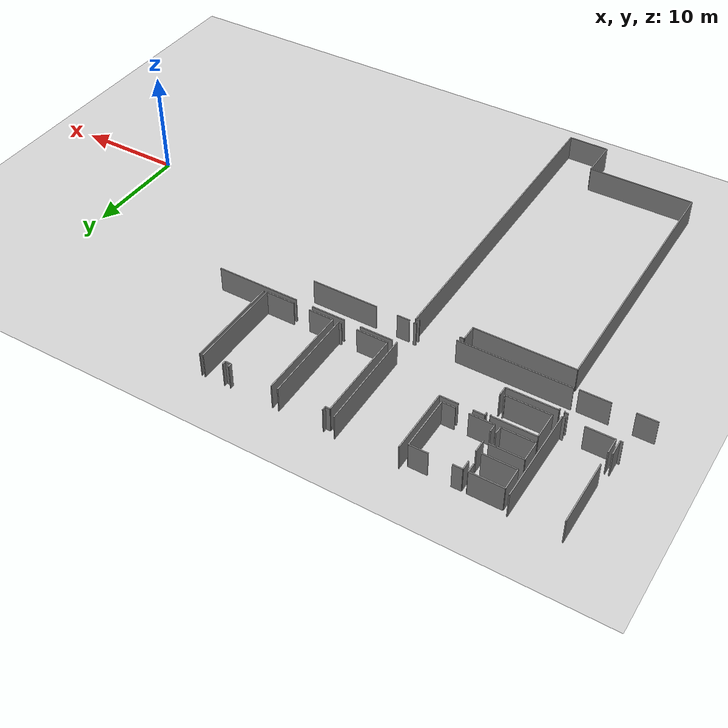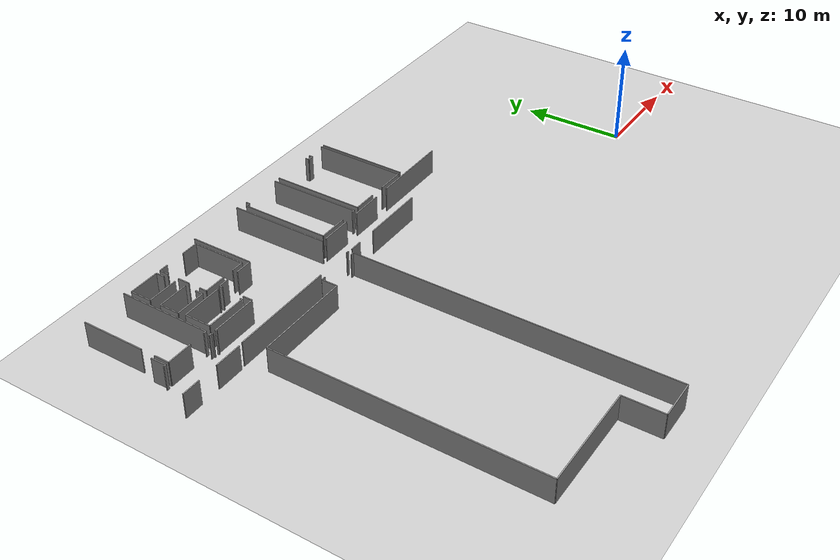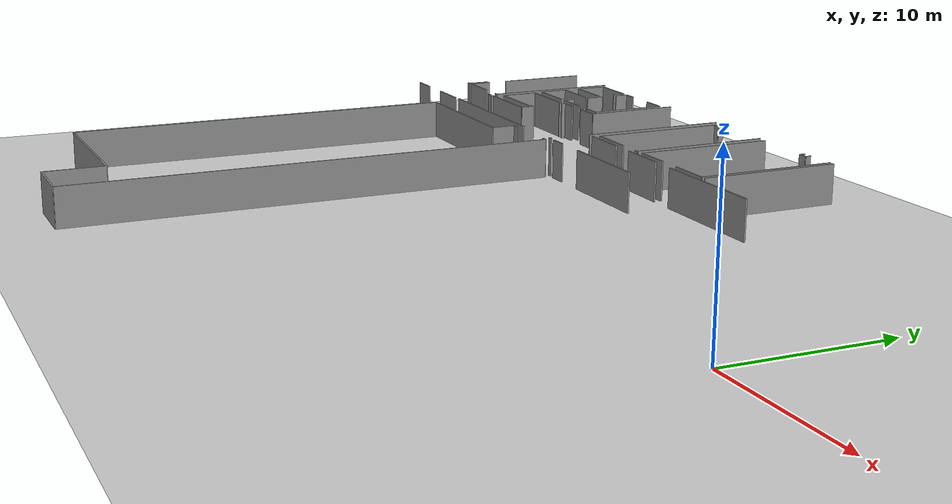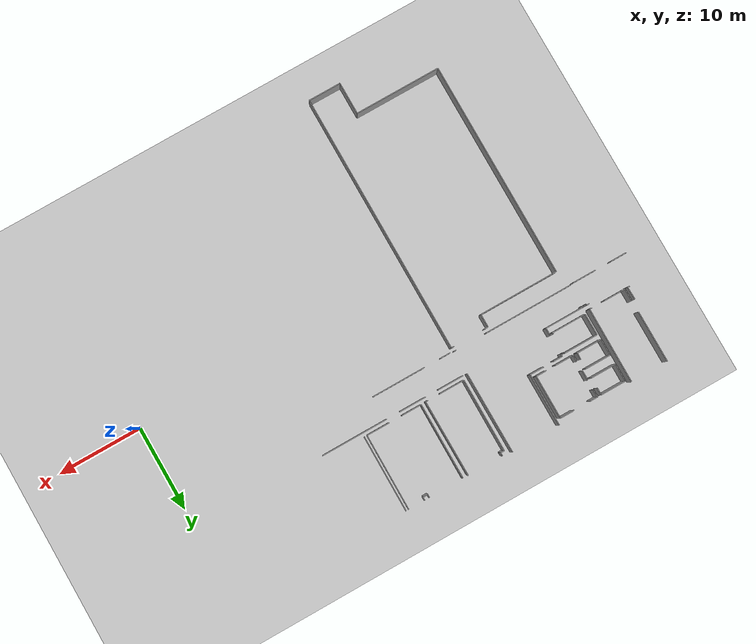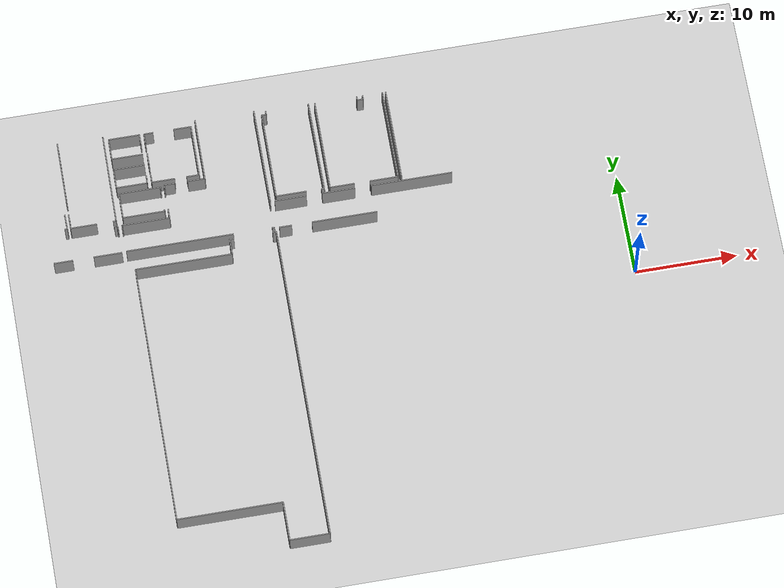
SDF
<sdf version="1.6">
 <world name="default">
  <model name="ground_plane">
   <static>1</static>
   <link name="link">
    <collision name="collision">
     <geometry><plane><normal>0 0 1</normal><size>100 100</size></plane></geometry>
     <surface><friction><ode><mu>100</mu><mu2>50</mu2></ode></friction></surface>
    </collision>
    <visual name="visual">
     <cast_shadows>0</cast_shadows>
     <geometry><plane><normal>0 0 1</normal><size>100 100</size></plane></geometry>
     <material>
      <script><uri>file://media/materials/scripts/gazebo.material</uri><name>Gazebo/Grey</name></script>
     </material>
    </visual>
   </link>
  </model>
  <model name="50010536_PLAN4">
   <static>1</static>
   <link name="Wall_0">
    <collision name="Wall_0_Collision">
     <geometry><box><size>2.76519696537 0.1 2.5</size></box></geometry>
     <pose>1.38259848268 0 1.25 0 0 0</pose>
    </collision>
    <visual name="Wall_0_Visual">
     <pose>1.38259848268 0 1.25 0 0 0</pose>
     <geometry><box><size>2.76519696537 0.1 2.5</size></box></geometry>
     <material>
      <script><uri>file://media/materials/scripts/gazebo.material</uri><name>Gazebo/Grey</name></script>
      <ambient>1 1 1 1</ambient>
     </material>
    </visual>
    <pose>53.7737231375 -12.5419166429 0 0 0 3.14159265359</pose>
   </link>
   <link name="Wall_1">
    <collision name="Wall_1_Collision">
     <geometry><box><size>1.85861663969 0.1 2.5</size></box></geometry>
     <pose>0.929308319843 0 1.25 0 0 0</pose>
    </collision>
    <visual name="Wall_1_Visual">
     <pose>0.929308319843 0 1.25 0 0 0</pose>
     <geometry><box><size>1.85861663969 0.1 2.5</size></box></geometry>
     <material>
      <script><uri>file://media/materials/scripts/gazebo.material</uri><name>Gazebo/Grey</name></script>
      <ambient>1 1 1 1</ambient>
     </material>
    </visual>
    <pose>48.9759578453 -12.5419166429 0 0 0 3.14159265359</pose>
   </link>
   <link name="Wall_20">
    <collision name="Wall_20_Collision">
     <geometry><box><size>0.30752626734 0.1 2.5</size></box></geometry>
     <pose>0.15376313367 0 1.25 0 0 0</pose>
    </collision>
    <visual name="Wall_20_Visual">
     <pose>0.15376313367 0 1.25 0 0 0</pose>
     <geometry><box><size>0.30752626734 0.1 2.5</size></box></geometry>
     <material>
      <script><uri>file://media/materials/scripts/gazebo.material</uri><name>Gazebo/Grey</name></script>
      <ambient>1 1 1 1</ambient>
     </material>
    </visual>
    <pose>53.4222645462 -9.72712440085 0 0 0 0.0</pose>
   </link>
   <link name="Wall_21">
    <collision name="Wall_21_Collision">
     <geometry><box><size>0.14932537456 0.1 2.5</size></box></geometry>
     <pose>0.0746626872802 0 1.25 0 0 0</pose>
    </collision>
    <visual name="Wall_21_Visual">
     <pose>0.0746626872802 0 1.25 0 0 0</pose>
     <geometry><box><size>0.14932537456 0.1 2.5</size></box></geometry>
     <material>
      <script><uri>file://media/materials/scripts/gazebo.material</uri><name>Gazebo/Grey</name></script>
      <ambient>1 1 1 1</ambient>
     </material>
    </visual>
    <pose>53.7297908136 -9.72712440085 0 0 0 -1.27217236395</pose>
   </link>
   <link name="Wall_69">
    <collision name="Wall_69_Collision">
     <geometry><box><size>0.261308446815 0.1 2.5</size></box></geometry>
     <pose>0.130654223407 0 1.25 0 0 0</pose>
    </collision>
    <visual name="Wall_69_Visual">
     <pose>0.130654223407 0 1.25 0 0 0</pose>
     <geometry><box><size>0.261308446815 0.1 2.5</size></box></geometry>
     <material>
      <script><uri>file://media/materials/scripts/gazebo.material</uri><name>Gazebo/Grey</name></script>
      <ambient>1 1 1 1</ambient>
     </material>
    </visual>
    <pose>48.9322794654 -9.20760562486 0 0 0 3.14159265359</pose>
   </link>
   <link name="Wall_73">
    <collision name="Wall_73_Collision">
     <geometry><box><size>1.50540536487 0.1 2.5</size></box></geometry>
     <pose>0.752702682434 0 1.25 0 0 0</pose>
    </collision>
    <visual name="Wall_73_Visual">
     <pose>0.752702682434 0 1.25 0 0 0</pose>
     <geometry><box><size>1.50540536487 0.1 2.5</size></box></geometry>
     <material>
      <script><uri>file://media/materials/scripts/gazebo.material</uri><name>Gazebo/Grey</name></script>
      <ambient>1 1 1 1</ambient>
     </material>
    </visual>
    <pose>48.8952036314 -7.70265688982 0 0 0 -1.54616536422</pose>
   </link>
   <link name="Wall_74">
    <collision name="Wall_74_Collision">
     <geometry><box><size>0.302955274101 0.1 2.5</size></box></geometry>
     <pose>0.15147763705 0 1.25 0 0 0</pose>
    </collision>
    <visual name="Wall_74_Visual">
     <pose>0.15147763705 0 1.25 0 0 0</pose>
     <geometry><box><size>0.302955274101 0.1 2.5</size></box></geometry>
     <material>
      <script><uri>file://media/materials/scripts/gazebo.material</uri><name>Gazebo/Grey</name></script>
      <ambient>1 1 1 1</ambient>
     </material>
    </visual>
    <pose>53.7071897914 -9.19244516395 0 0 0 3.14159265359</pose>
   </link>
   <link name="Wall_75">
    <collision name="Wall_75_Collision">
     <geometry><box><size>2.54858267467 0.1 2.5</size></box></geometry>
     <pose>1.27429133733 0 1.25 0 0 0</pose>
    </collision>
    <visual name="Wall_75_Visual">
     <pose>1.27429133733 0 1.25 0 0 0</pose>
     <geometry><box><size>2.54858267467 0.1 2.5</size></box></geometry>
     <material>
      <script><uri>file://media/materials/scripts/gazebo.material</uri><name>Gazebo/Grey</name></script>
      <ambient>1 1 1 1</ambient>
     </material>
    </visual>
    <pose>51.808957877 -9.19244516395 0 0 0 3.14159265359</pose>
   </link>
   <link name="Wall_76">
    <collision name="Wall_76_Collision">
     <geometry><box><size>1.48277941783 0.1 2.5</size></box></geometry>
     <pose>0.741389708917 0 1.25 0 0 0</pose>
    </collision>
    <visual name="Wall_76_Visual">
     <pose>0.741389708917 0 1.25 0 0 0</pose>
     <geometry><box><size>1.48277941783 0.1 2.5</size></box></geometry>
     <material>
      <script><uri>file://media/materials/scripts/gazebo.material</uri><name>Gazebo/Grey</name></script>
      <ambient>1 1 1 1</ambient>
     </material>
    </visual>
    <pose>49.2603752024 -9.19244516395 0 0 0 1.57079632679</pose>
   </link>
   <link name="Wall_77">
    <collision name="Wall_77_Collision">
     <geometry><box><size>6.1405961337 0.1 2.5</size></box></geometry>
     <pose>3.07029806685 0 1.25 0 0 0</pose>
    </collision>
    <visual name="Wall_77_Visual">
     <pose>3.07029806685 0 1.25 0 0 0</pose>
     <geometry><box><size>6.1405961337 0.1 2.5</size></box></geometry>
     <material>
      <script><uri>file://media/materials/scripts/gazebo.material</uri><name>Gazebo/Grey</name></script>
      <ambient>1 1 1 1</ambient>
     </material>
    </visual>
    <pose>49.2603752024 -6.34822080437 0 0 0 1.57079632679</pose>
   </link>
   <link name="Wall_78">
    <collision name="Wall_78_Collision">
     <geometry><box><size>8.98489387824 0.1 2.5</size></box></geometry>
     <pose>4.49244693912 0 1.25 0 0 0</pose>
    </collision>
    <visual name="Wall_78_Visual">
     <pose>4.49244693912 0 1.25 0 0 0</pose>
     <geometry><box><size>8.98489387824 0.1 2.5</size></box></geometry>
     <material>
      <script><uri>file://media/materials/scripts/gazebo.material</uri><name>Gazebo/Grey</name></script>
      <ambient>1 1 1 1</ambient>
     </material>
    </visual>
    <pose>53.7435037933 -0.207624670666 0 0 0 -1.57483801067</pose>
   </link>
   <link name="Wall_79">
    <collision name="Wall_79_Collision">
     <geometry><box><size>0.267910992604 0.1 2.5</size></box></geometry>
     <pose>0.133955496302 0 1.25 0 0 0</pose>
    </collision>
    <visual name="Wall_79_Visual">
     <pose>0.133955496302 0 1.25 0 0 0</pose>
     <geometry><box><size>0.267910992604 0.1 2.5</size></box></geometry>
     <material>
      <script><uri>file://media/materials/scripts/gazebo.material</uri><name>Gazebo/Grey</name></script>
      <ambient>1 1 1 1</ambient>
     </material>
    </visual>
    <pose>68.7142684824 -12.4743675206 0 0 0 3.14159265359</pose>
   </link>
   <link name="Wall_80">
    <collision name="Wall_80_Collision">
     <geometry><box><size>10.4739231184 0.1 2.5</size></box></geometry>
     <pose>5.23696155922 0 1.25 0 0 0</pose>
    </collision>
    <visual name="Wall_80_Visual">
     <pose>5.23696155922 0 1.25 0 0 0</pose>
     <geometry><box><size>10.4739231184 0.1 2.5</size></box></geometry>
     <material>
      <script><uri>file://media/materials/scripts/gazebo.material</uri><name>Gazebo/Grey</name></script>
      <ambient>1 1 1 1</ambient>
     </material>
    </visual>
    <pose>64.6735104593 -12.4743675206 0 0 0 3.14159265359</pose>
   </link>
   <link name="Wall_81">
    <collision name="Wall_81_Collision">
     <geometry><box><size>0.174231025617 0.1 2.5</size></box></geometry>
     <pose>0.0871155128083 0 1.25 0 0 0</pose>
    </collision>
    <visual name="Wall_81_Visual">
     <pose>0.0871155128083 0 1.25 0 0 0</pose>
     <geometry><box><size>0.174231025617 0.1 2.5</size></box></geometry>
     <material>
      <script><uri>file://media/materials/scripts/gazebo.material</uri><name>Gazebo/Grey</name></script>
      <ambient>1 1 1 1</ambient>
     </material>
    </visual>
    <pose>54.1995873409 -9.90452972733 0 0 0 1.57079632679</pose>
   </link>
   <link name="Wall_82">
    <collision name="Wall_82_Collision">
     <geometry><box><size>4.64616068311 0.1 2.5</size></box></geometry>
     <pose>2.32308034155 0 1.25 0 0 0</pose>
    </collision>
    <visual name="Wall_82_Visual">
     <pose>2.32308034155 0 1.25 0 0 0</pose>
     <geometry><box><size>4.64616068311 0.1 2.5</size></box></geometry>
     <material>
      <script><uri>file://media/materials/scripts/gazebo.material</uri><name>Gazebo/Grey</name></script>
      <ambient>1 1 1 1</ambient>
     </material>
    </visual>
    <pose>54.1995873409 -9.73029870171 0 0 0 0.0</pose>
   </link>
   <link name="Wall_83">
    <collision name="Wall_83_Collision">
     <geometry><box><size>0.936367964956 0.1 2.5</size></box></geometry>
     <pose>0.468183982478 0 1.25 0 0 0</pose>
    </collision>
    <visual name="Wall_83_Visual">
     <pose>0.468183982478 0 1.25 0 0 0</pose>
     <geometry><box><size>0.936367964956 0.1 2.5</size></box></geometry>
     <material>
      <script><uri>file://media/materials/scripts/gazebo.material</uri><name>Gazebo/Grey</name></script>
      <ambient>1 1 1 1</ambient>
     </material>
    </visual>
    <pose>58.845748024 -9.73029870171 0 0 0 1.57079632679</pose>
   </link>
   <link name="Wall_84">
    <collision name="Wall_84_Collision">
     <geometry><box><size>0.315449322287 0.1 2.5</size></box></geometry>
     <pose>0.157724661143 0 1.25 0 0 0</pose>
    </collision>
    <visual name="Wall_84_Visual">
     <pose>0.157724661143 0 1.25 0 0 0</pose>
     <geometry><box><size>0.315449322287 0.1 2.5</size></box></geometry>
     <material>
      <script><uri>file://media/materials/scripts/gazebo.material</uri><name>Gazebo/Grey</name></script>
      <ambient>1 1 1 1</ambient>
     </material>
    </visual>
    <pose>58.845748024 -6.56407326286 0 0 0 1.57079632679</pose>
   </link>
   <link name="Wall_85">
    <collision name="Wall_85_Collision">
     <geometry><box><size>1.04066279402 0.1 2.5</size></box></geometry>
     <pose>0.52033139701 0 1.25 0 0 0</pose>
    </collision>
    <visual name="Wall_85_Visual">
     <pose>0.52033139701 0 1.25 0 0 0</pose>
     <geometry><box><size>1.04066279402 0.1 2.5</size></box></geometry>
     <material>
      <script><uri>file://media/materials/scripts/gazebo.material</uri><name>Gazebo/Grey</name></script>
      <ambient>1 1 1 1</ambient>
     </material>
    </visual>
    <pose>58.845748024 -6.24862394058 0 0 0 0.0</pose>
   </link>
   <link name="Wall_86">
    <collision name="Wall_86_Collision">
     <geometry><box><size>1.69050566613 0.1 2.5</size></box></geometry>
     <pose>0.845252833064 0 1.25 0 0 0</pose>
    </collision>
    <visual name="Wall_86_Visual">
     <pose>0.845252833064 0 1.25 0 0 0</pose>
     <geometry><box><size>1.69050566613 0.1 2.5</size></box></geometry>
     <material>
      <script><uri>file://media/materials/scripts/gazebo.material</uri><name>Gazebo/Grey</name></script>
      <ambient>1 1 1 1</ambient>
     </material>
    </visual>
    <pose>61.1624797638 -6.24862394058 0 0 0 0.0</pose>
   </link>
   <link name="Wall_87">
    <collision name="Wall_87_Collision">
     <geometry><box><size>6.23442846713 0.1 2.5</size></box></geometry>
     <pose>3.11721423357 0 1.25 0 0 0</pose>
    </collision>
    <visual name="Wall_87_Visual">
     <pose>3.11721423357 0 1.25 0 0 0</pose>
     <geometry><box><size>6.23442846713 0.1 2.5</size></box></geometry>
     <material>
      <script><uri>file://media/materials/scripts/gazebo.material</uri><name>Gazebo/Grey</name></script>
      <ambient>1 1 1 1</ambient>
     </material>
    </visual>
    <pose>62.85298543 -6.24862394058 0 0 0 1.57079632679</pose>
   </link>
   <link name="Wall_88">
    <collision name="Wall_88_Collision">
     <geometry><box><size>9.68648778193 0.1 2.5</size></box></geometry>
     <pose>4.84324389096 0 1.25 0 0 0</pose>
    </collision>
    <visual name="Wall_88_Visual">
     <pose>4.84324389096 0 1.25 0 0 0</pose>
     <geometry><box><size>9.68648778193 0.1 2.5</size></box></geometry>
     <material>
      <script><uri>file://media/materials/scripts/gazebo.material</uri><name>Gazebo/Grey</name></script>
      <ambient>1 1 1 1</ambient>
     </material>
    </visual>
    <pose>68.6609402279 -0.014195473447 0 0 0 -1.56529087166</pose>
   </link>
   <link name="Wall_89">
    <collision name="Wall_89_Collision">
     <geometry><box><size>4.09103894867 0.1 2.5</size></box></geometry>
     <pose>2.04551947434 0 1.25 0 0 0</pose>
    </collision>
    <visual name="Wall_89_Visual">
     <pose>2.04551947434 0 1.25 0 0 0</pose>
     <geometry><box><size>4.09103894867 0.1 2.5</size></box></geometry>
     <material>
      <script><uri>file://media/materials/scripts/gazebo.material</uri><name>Gazebo/Grey</name></script>
      <ambient>1 1 1 1</ambient>
     </material>
    </visual>
    <pose>58.4955591531 -8.96585087135 0 0 0 3.14159265359</pose>
   </link>
   <link name="Wall_90">
    <collision name="Wall_90_Collision">
     <geometry><box><size>2.55467733232 0.1 2.5</size></box></geometry>
     <pose>1.27733866616 0 1.25 0 0 0</pose>
    </collision>
    <visual name="Wall_90_Visual">
     <pose>1.27733866616 0 1.25 0 0 0</pose>
     <geometry><box><size>2.55467733232 0.1 2.5</size></box></geometry>
     <material>
      <script><uri>file://media/materials/scripts/gazebo.material</uri><name>Gazebo/Grey</name></script>
      <ambient>1 1 1 1</ambient>
     </material>
    </visual>
    <pose>54.4045202044 -8.96585087135 0 0 0 1.57079632679</pose>
   </link>
   <link name="Wall_91">
    <collision name="Wall_91_Collision">
     <geometry><box><size>4.04990000952 0.1 2.5</size></box></geometry>
     <pose>2.02495000476 0 1.25 0 0 0</pose>
    </collision>
    <visual name="Wall_91_Visual">
     <pose>2.02495000476 0 1.25 0 0 0</pose>
     <geometry><box><size>4.04990000952 0.1 2.5</size></box></geometry>
     <material>
      <script><uri>file://media/materials/scripts/gazebo.material</uri><name>Gazebo/Grey</name></script>
      <ambient>1 1 1 1</ambient>
     </material>
    </visual>
    <pose>54.4045202044 -6.41117353903 0 0 0 0.0</pose>
   </link>
   <link name="Wall_92">
    <collision name="Wall_92_Collision">
     <geometry><box><size>0.129917785608 0.1 2.5</size></box></geometry>
     <pose>0.0649588928039 0 1.25 0 0 0</pose>
    </collision>
    <visual name="Wall_92_Visual">
     <pose>0.0649588928039 0 1.25 0 0 0</pose>
     <geometry><box><size>0.129917785608 0.1 2.5</size></box></geometry>
     <material>
      <script><uri>file://media/materials/scripts/gazebo.material</uri><name>Gazebo/Grey</name></script>
      <ambient>1 1 1 1</ambient>
     </material>
    </visual>
    <pose>58.4544202139 -6.41117353903 0 0 0 -1.57079632679</pose>
   </link>
   <link name="Wall_93">
    <collision name="Wall_93_Collision">
     <geometry><box><size>0.198153012521 0.1 2.5</size></box></geometry>
     <pose>0.0990765062603 0 1.25 0 0 0</pose>
    </collision>
    <visual name="Wall_93_Visual">
     <pose>0.0990765062603 0 1.25 0 0 0</pose>
     <geometry><box><size>0.198153012521 0.1 2.5</size></box></geometry>
     <material>
      <script><uri>file://media/materials/scripts/gazebo.material</uri><name>Gazebo/Grey</name></script>
      <ambient>1 1 1 1</ambient>
     </material>
    </visual>
    <pose>58.4544202139 -8.77201536362 0 0 0 -1.36166321376</pose>
   </link>
   <link name="Wall_94">
    <collision name="Wall_94_Collision">
     <geometry><box><size>1.24051677618 0.1 2.5</size></box></geometry>
     <pose>0.62025838809 0 1.25 0 0 0</pose>
    </collision>
    <visual name="Wall_94_Visual">
     <pose>0.62025838809 0 1.25 0 0 0</pose>
     <geometry><box><size>1.24051677618 0.1 2.5</size></box></geometry>
     <material>
      <script><uri>file://media/materials/scripts/gazebo.material</uri><name>Gazebo/Grey</name></script>
      <ambient>1 1 1 1</ambient>
     </material>
    </visual>
    <pose>62.3699838111 -5.7638193188 0 0 0 3.14159265359</pose>
   </link>
   <link name="Wall_95">
    <collision name="Wall_95_Collision">
     <geometry><box><size>2.23953274291 0.1 2.5</size></box></geometry>
     <pose>1.11976637146 0 1.25 0 0 0</pose>
    </collision>
    <visual name="Wall_95_Visual">
     <pose>1.11976637146 0 1.25 0 0 0</pose>
     <geometry><box><size>2.23953274291 0.1 2.5</size></box></geometry>
     <material>
      <script><uri>file://media/materials/scripts/gazebo.material</uri><name>Gazebo/Grey</name></script>
      <ambient>1 1 1 1</ambient>
     </material>
    </visual>
    <pose>59.9765609624 -5.7638193188 0 0 0 3.14159265359</pose>
   </link>
   <link name="Wall_96">
    <collision name="Wall_96_Collision">
     <geometry><box><size>0.768510935466 0.1 2.5</size></box></geometry>
     <pose>0.384255467733 0 1.25 0 0 0</pose>
    </collision>
    <visual name="Wall_96_Visual">
     <pose>0.384255467733 0 1.25 0 0 0</pose>
     <geometry><box><size>0.768510935466 0.1 2.5</size></box></geometry>
     <material>
      <script><uri>file://media/materials/scripts/gazebo.material</uri><name>Gazebo/Grey</name></script>
      <ambient>1 1 1 1</ambient>
     </material>
    </visual>
    <pose>57.7370282195 -5.7638193188 0 0 0 1.57079632679</pose>
   </link>
   <link name="Wall_97">
    <collision name="Wall_97_Collision">
     <geometry><box><size>1.1966860299 0.1 2.5</size></box></geometry>
     <pose>0.598343014951 0 1.25 0 0 0</pose>
    </collision>
    <visual name="Wall_97_Visual">
     <pose>0.598343014951 0 1.25 0 0 0</pose>
     <geometry><box><size>1.1966860299 0.1 2.5</size></box></geometry>
     <material>
      <script><uri>file://media/materials/scripts/gazebo.material</uri><name>Gazebo/Grey</name></script>
      <ambient>1 1 1 1</ambient>
     </material>
    </visual>
    <pose>57.7370282195 -3.86449544488 0 0 0 1.57079632679</pose>
   </link>
   <link name="Wall_98">
    <collision name="Wall_98_Collision">
     <geometry><box><size>0.909043583151 0.1 2.5</size></box></geometry>
     <pose>0.454521791575 0 1.25 0 0 0</pose>
    </collision>
    <visual name="Wall_98_Visual">
     <pose>0.454521791575 0 1.25 0 0 0</pose>
     <geometry><box><size>0.909043583151 0.1 2.5</size></box></geometry>
     <material>
      <script><uri>file://media/materials/scripts/gazebo.material</uri><name>Gazebo/Grey</name></script>
      <ambient>1 1 1 1</ambient>
     </material>
    </visual>
    <pose>57.7370282195 -1.51614766848 0 0 0 1.57079632679</pose>
   </link>
   <link name="Wall_99">
    <collision name="Wall_99_Collision">
     <geometry><box><size>0.894137066311 0.1 2.5</size></box></geometry>
     <pose>0.447068533156 0 1.25 0 0 0</pose>
    </collision>
    <visual name="Wall_99_Visual">
     <pose>0.447068533156 0 1.25 0 0 0</pose>
     <geometry><box><size>0.894137066311 0.1 2.5</size></box></geometry>
     <material>
      <script><uri>file://media/materials/scripts/gazebo.material</uri><name>Gazebo/Grey</name></script>
      <ambient>1 1 1 1</ambient>
     </material>
    </visual>
    <pose>57.7370282195 -0.607104085325 0 0 0 0.0</pose>
   </link>
   <link name="Wall_100">
    <collision name="Wall_100_Collision">
     <geometry><box><size>1.71716979335 0.1 2.5</size></box></geometry>
     <pose>0.858584896677 0 1.25 0 0 0</pose>
    </collision>
    <visual name="Wall_100_Visual">
     <pose>0.858584896677 0 1.25 0 0 0</pose>
     <geometry><box><size>1.71716979335 0.1 2.5</size></box></geometry>
     <material>
      <script><uri>file://media/materials/scripts/gazebo.material</uri><name>Gazebo/Grey</name></script>
      <ambient>1 1 1 1</ambient>
     </material>
    </visual>
    <pose>60.6512903533 -0.607104085325 0 0 0 0.0</pose>
   </link>
   <link name="Wall_101">
    <collision name="Wall_101_Collision">
     <geometry><box><size>5.15671545857 0.1 2.5</size></box></geometry>
     <pose>2.57835772928 0 1.25 0 0 0</pose>
    </collision>
    <visual name="Wall_101_Visual">
     <pose>2.57835772928 0 1.25 0 0 0</pose>
     <geometry><box><size>5.15671545857 0.1 2.5</size></box></geometry>
     <material>
      <script><uri>file://media/materials/scripts/gazebo.material</uri><name>Gazebo/Grey</name></script>
      <ambient>1 1 1 1</ambient>
     </material>
    </visual>
    <pose>62.3684601467 -0.607104085325 0 0 0 -1.57050085491</pose>
   </link>
   <link name="Wall_102">
    <collision name="Wall_102_Collision">
     <geometry><box><size>2.99222296289 0.1 2.5</size></box></geometry>
     <pose>1.49611148145 0 1.25 0 0 0</pose>
    </collision>
    <visual name="Wall_102_Visual">
     <pose>1.49611148145 0 1.25 0 0 0</pose>
     <geometry><box><size>2.99222296289 0.1 2.5</size></box></geometry>
     <material>
      <script><uri>file://media/materials/scripts/gazebo.material</uri><name>Gazebo/Grey</name></script>
      <ambient>1 1 1 1</ambient>
     </material>
    </visual>
    <pose>57.2423451735 -5.7583087325 0 0 0 3.14159265359</pose>
   </link>
   <link name="Wall_103">
    <collision name="Wall_103_Collision">
     <geometry><box><size>1.93170174269 0.1 2.5</size></box></geometry>
     <pose>0.965850871346 0 1.25 0 0 0</pose>
    </collision>
    <visual name="Wall_103_Visual">
     <pose>0.965850871346 0 1.25 0 0 0</pose>
     <geometry><box><size>1.93170174269 0.1 2.5</size></box></geometry>
     <material>
      <script><uri>file://media/materials/scripts/gazebo.material</uri><name>Gazebo/Grey</name></script>
      <ambient>1 1 1 1</ambient>
     </material>
    </visual>
    <pose>54.2501222106 -5.7583087325 0 0 0 1.57079632679</pose>
   </link>
   <link name="Wall_104">
    <collision name="Wall_104_Collision">
     <geometry><box><size>3.04275783259 0.1 2.5</size></box></geometry>
     <pose>1.52137891629 0 1.25 0 0 0</pose>
    </collision>
    <visual name="Wall_104_Visual">
     <pose>1.52137891629 0 1.25 0 0 0</pose>
     <geometry><box><size>3.04275783259 0.1 2.5</size></box></geometry>
     <material>
      <script><uri>file://media/materials/scripts/gazebo.material</uri><name>Gazebo/Grey</name></script>
      <ambient>1 1 1 1</ambient>
     </material>
    </visual>
    <pose>54.2501222106 -3.82660698981 0 0 0 0.0</pose>
   </link>
   <link name="Wall_105">
    <collision name="Wall_105_Collision">
     <geometry><box><size>0.784412110821 0.1 2.5</size></box></geometry>
     <pose>0.392206055411 0 1.25 0 0 0</pose>
    </collision>
    <visual name="Wall_105_Visual">
     <pose>0.392206055411 0 1.25 0 0 0</pose>
     <geometry><box><size>0.784412110821 0.1 2.5</size></box></geometry>
     <material>
      <script><uri>file://media/materials/scripts/gazebo.material</uri><name>Gazebo/Grey</name></script>
      <ambient>1 1 1 1</ambient>
     </material>
    </visual>
    <pose>57.2928800432 -4.97552614037 0 0 0 -1.63526485221</pose>
   </link>
   <link name="Wall_106">
    <collision name="Wall_106_Collision">
     <geometry><box><size>0.851804590039 0.1 2.5</size></box></geometry>
     <pose>0.42590229502 0 1.25 0 0 0</pose>
    </collision>
    <visual name="Wall_106_Visual">
     <pose>0.42590229502 0 1.25 0 0 0</pose>
     <geometry><box><size>0.851804590039 0.1 2.5</size></box></geometry>
     <material>
      <script><uri>file://media/materials/scripts/gazebo.material</uri><name>Gazebo/Grey</name></script>
      <ambient>1 1 1 1</ambient>
     </material>
    </visual>
    <pose>57.2880551059 -1.45614068501 0 0 0 1.57079632679</pose>
   </link>
   <link name="Wall_107">
    <collision name="Wall_107_Collision">
     <geometry><box><size>3.03336190204 0.1 2.5</size></box></geometry>
     <pose>1.51668095102 0 1.25 0 0 0</pose>
    </collision>
    <visual name="Wall_107_Visual">
     <pose>1.51668095102 0 1.25 0 0 0</pose>
     <geometry><box><size>3.03336190204 0.1 2.5</size></box></geometry>
     <material>
      <script><uri>file://media/materials/scripts/gazebo.material</uri><name>Gazebo/Grey</name></script>
      <ambient>1 1 1 1</ambient>
     </material>
    </visual>
    <pose>57.2880551059 -0.604336094975 0 0 0 3.14159265359</pose>
   </link>
   <link name="Wall_108">
    <collision name="Wall_108_Collision">
     <geometry><box><size>2.08620131416 0.1 2.5</size></box></geometry>
     <pose>1.04310065708 0 1.25 0 0 0</pose>
    </collision>
    <visual name="Wall_108_Visual">
     <pose>1.04310065708 0 1.25 0 0 0</pose>
     <geometry><box><size>2.08620131416 0.1 2.5</size></box></geometry>
     <material>
      <script><uri>file://media/materials/scripts/gazebo.material</uri><name>Gazebo/Grey</name></script>
      <ambient>1 1 1 1</ambient>
     </material>
    </visual>
    <pose>54.2546932038 -0.604336094975 0 0 0 -1.57079632679</pose>
   </link>
   <link name="Wall_109">
    <collision name="Wall_109_Collision">
     <geometry><box><size>3.03336611151 0.1 2.5</size></box></geometry>
     <pose>1.51668305576 0 1.25 0 0 0</pose>
    </collision>
    <visual name="Wall_109_Visual">
     <pose>1.51668305576 0 1.25 0 0 0</pose>
     <geometry><box><size>3.03336611151 0.1 2.5</size></box></geometry>
     <material>
      <script><uri>file://media/materials/scripts/gazebo.material</uri><name>Gazebo/Grey</name></script>
      <ambient>1 1 1 1</ambient>
     </material>
    </visual>
    <pose>54.2546932038 -2.69053740914 0 0 0 -0.00166596748343</pose>
   </link>
   <link name="Wall_110">
    <collision name="Wall_110_Collision">
     <geometry><box><size>3.85994984605 0.1 2.5</size></box></geometry>
     <pose>1.92997492302 0 1.25 0 0 0</pose>
    </collision>
    <visual name="Wall_110_Visual">
     <pose>1.92997492302 0 1.25 0 0 0</pose>
     <geometry><box><size>3.85994984605 0.1 2.5</size></box></geometry>
     <material>
      <script><uri>file://media/materials/scripts/gazebo.material</uri><name>Gazebo/Grey</name></script>
      <ambient>1 1 1 1</ambient>
     </material>
    </visual>
    <pose>68.8257499286 -44.1119893343 0 0 0 3.14159265359</pose>
   </link>
   <link name="Wall_111">
    <collision name="Wall_111_Collision">
     <geometry><box><size>3.83455543916 0.1 2.5</size></box></geometry>
     <pose>1.91727771958 0 1.25 0 0 0</pose>
    </collision>
    <visual name="Wall_111_Visual">
     <pose>1.91727771958 0 1.25 0 0 0</pose>
     <geometry><box><size>3.83455543916 0.1 2.5</size></box></geometry>
     <material>
      <script><uri>file://media/materials/scripts/gazebo.material</uri><name>Gazebo/Grey</name></script>
      <ambient>1 1 1 1</ambient>
     </material>
    </visual>
    <pose>64.9658000825 -44.1119893343 0 0 0 1.57079632679</pose>
   </link>
   <link name="Wall_112">
    <collision name="Wall_112_Collision">
     <geometry><box><size>10.1831571596 0.1 2.5</size></box></geometry>
     <pose>5.09157857982 0 1.25 0 0 0</pose>
    </collision>
    <visual name="Wall_112_Visual">
     <pose>5.09157857982 0 1.25 0 0 0</pose>
     <geometry><box><size>10.1831571596 0.1 2.5</size></box></geometry>
     <material>
      <script><uri>file://media/materials/scripts/gazebo.material</uri><name>Gazebo/Grey</name></script>
      <ambient>1 1 1 1</ambient>
     </material>
    </visual>
    <pose>64.9658000825 -40.2774338952 0 0 0 3.14159265359</pose>
   </link>
   <link name="Wall_113">
    <collision name="Wall_113_Collision">
     <geometry><box><size>25.7847189157 0.1 2.5</size></box></geometry>
     <pose>12.8923594578 0 1.25 0 0 0</pose>
    </collision>
    <visual name="Wall_113_Visual">
     <pose>12.8923594578 0 1.25 0 0 0</pose>
     <geometry><box><size>25.7847189157 0.1 2.5</size></box></geometry>
     <material>
      <script><uri>file://media/materials/scripts/gazebo.material</uri><name>Gazebo/Grey</name></script>
      <ambient>1 1 1 1</ambient>
     </material>
    </visual>
    <pose>54.7826429229 -40.2774338952 0 0 0 1.57079632679</pose>
   </link>
   <link name="Wall_114">
    <collision name="Wall_114_Collision">
     <geometry><box><size>9.4398628702 0.1 2.5</size></box></geometry>
     <pose>4.7199314351 0 1.25 0 0 0</pose>
    </collision>
    <visual name="Wall_114_Visual">
     <pose>4.7199314351 0 1.25 0 0 0</pose>
     <geometry><box><size>9.4398628702 0.1 2.5</size></box></geometry>
     <material>
      <script><uri>file://media/materials/scripts/gazebo.material</uri><name>Gazebo/Grey</name></script>
      <ambient>1 1 1 1</ambient>
     </material>
    </visual>
    <pose>54.7826429229 -14.4927149795 0 0 0 0.0</pose>
   </link>
   <link name="Wall_115">
    <collision name="Wall_115_Collision">
     <geometry><box><size>1.55286798083 0.1 2.5</size></box></geometry>
     <pose>0.776433990414 0 1.25 0 0 0</pose>
    </collision>
    <visual name="Wall_115_Visual">
     <pose>0.776433990414 0 1.25 0 0 0</pose>
     <geometry><box><size>1.55286798083 0.1 2.5</size></box></geometry>
     <material>
      <script><uri>file://media/materials/scripts/gazebo.material</uri><name>Gazebo/Grey</name></script>
      <ambient>1 1 1 1</ambient>
     </material>
    </visual>
    <pose>64.2225057931 -14.4927149795 0 0 0 1.57079632679</pose>
   </link>
   <link name="Wall_116">
    <collision name="Wall_116_Collision">
     <geometry><box><size>0.417484049138 0.1 2.5</size></box></geometry>
     <pose>0.208742024569 0 1.25 0 0 0</pose>
    </collision>
    <visual name="Wall_116_Visual">
     <pose>0.208742024569 0 1.25 0 0 0</pose>
     <geometry><box><size>0.417484049138 0.1 2.5</size></box></geometry>
     <material>
      <script><uri>file://media/materials/scripts/gazebo.material</uri><name>Gazebo/Grey</name></script>
      <ambient>1 1 1 1</ambient>
     </material>
    </visual>
    <pose>64.2225057931 -12.9398469987 0 0 0 0.0</pose>
   </link>
   <link name="Wall_117">
    <collision name="Wall_117_Collision">
     <geometry><box><size>0.362124242136 0.1 2.5</size></box></geometry>
     <pose>0.181062121068 0 1.25 0 0 0</pose>
    </collision>
    <visual name="Wall_117_Visual">
     <pose>0.181062121068 0 1.25 0 0 0</pose>
     <geometry><box><size>0.362124242136 0.1 2.5</size></box></geometry>
     <material>
      <script><uri>file://media/materials/scripts/gazebo.material</uri><name>Gazebo/Grey</name></script>
      <ambient>1 1 1 1</ambient>
     </material>
    </visual>
    <pose>68.4303590134 -12.9398469987 0 0 0 0.0</pose>
   </link>
   <link name="Wall_118">
    <collision name="Wall_118_Collision">
     <geometry><box><size>31.1721600866 0.1 2.5</size></box></geometry>
     <pose>15.5860800433 0 1.25 0 0 0</pose>
    </collision>
    <visual name="Wall_118_Visual">
     <pose>15.5860800433 0 1.25 0 0 0</pose>
     <geometry><box><size>31.1721600866 0.1 2.5</size></box></geometry>
     <material>
      <script><uri>file://media/materials/scripts/gazebo.material</uri><name>Gazebo/Grey</name></script>
      <ambient>1 1 1 1</ambient>
     </material>
    </visual>
    <pose>68.7924832556 -12.9398469987 0 0 0 -1.56972913481</pose>
   </link>
   <link name="Wall_134">
    <collision name="Wall_134_Collision">
     <geometry><box><size>6.36333047646 0.1 2.5</size></box></geometry>
     <pose>3.18166523823 0 1.25 0 0 0</pose>
    </collision>
    <visual name="Wall_134_Visual">
     <pose>3.18166523823 0 1.25 0 0 0</pose>
     <geometry><box><size>6.36333047646 0.1 2.5</size></box></geometry>
     <material>
      <script><uri>file://media/materials/scripts/gazebo.material</uri><name>Gazebo/Grey</name></script>
      <ambient>1 1 1 1</ambient>
     </material>
    </visual>
    <pose>78.7183950735 -12.5381074818 0 0 0 3.14159265359</pose>
   </link>
   <link name="Wall_135">
    <collision name="Wall_135_Collision">
     <geometry><box><size>1.2077579913 0.1 2.5</size></box></geometry>
     <pose>0.603878995651 0 1.25 0 0 0</pose>
    </collision>
    <visual name="Wall_135_Visual">
     <pose>0.603878995651 0 1.25 0 0 0</pose>
     <geometry><box><size>1.2077579913 0.1 2.5</size></box></geometry>
     <material>
      <script><uri>file://media/materials/scripts/gazebo.material</uri><name>Gazebo/Grey</name></script>
      <ambient>1 1 1 1</ambient>
     </material>
    </visual>
    <pose>70.3603339365 -12.5381074818 0 0 0 3.14159265359</pose>
   </link>
   <link name="Wall_136">
    <collision name="Wall_136_Collision">
     <geometry><box><size>3.11411611593 0.1 2.5</size></box></geometry>
     <pose>1.55705805796 0 1.25 0 0 0</pose>
    </collision>
    <visual name="Wall_136_Visual">
     <pose>1.55705805796 0 1.25 0 0 0</pose>
     <geometry><box><size>3.11411611593 0.1 2.5</size></box></geometry>
     <material>
      <script><uri>file://media/materials/scripts/gazebo.material</uri><name>Gazebo/Grey</name></script>
      <ambient>1 1 1 1</ambient>
     </material>
    </visual>
    <pose>69.1525759451 -9.72273116846 0 0 0 0.0</pose>
   </link>
   <link name="Wall_137">
    <collision name="Wall_137_Collision">
     <geometry><box><size>3.20858330953 0.1 2.5</size></box></geometry>
     <pose>1.60429165476 0 1.25 0 0 0</pose>
    </collision>
    <visual name="Wall_137_Visual">
     <pose>1.60429165476 0 1.25 0 0 0</pose>
     <geometry><box><size>3.20858330953 0.1 2.5</size></box></geometry>
     <material>
      <script><uri>file://media/materials/scripts/gazebo.material</uri><name>Gazebo/Grey</name></script>
      <ambient>1 1 1 1</ambient>
     </material>
    </visual>
    <pose>73.8185442656 -9.72273116846 0 0 0 0.0</pose>
   </link>
   <link name="Wall_138">
    <collision name="Wall_138_Collision">
     <geometry><box><size>7.96673332698 0.1 2.5</size></box></geometry>
     <pose>3.98336666349 0 1.25 0 0 0</pose>
    </collision>
    <visual name="Wall_138_Visual">
     <pose>3.98336666349 0 1.25 0 0 0</pose>
     <geometry><box><size>7.96673332698 0.1 2.5</size></box></geometry>
     <material>
      <script><uri>file://media/materials/scripts/gazebo.material</uri><name>Gazebo/Grey</name></script>
      <ambient>1 1 1 1</ambient>
     </material>
    </visual>
    <pose>78.6300225375 -9.72273116846 0 0 0 0.0</pose>
   </link>
   <link name="Wall_152">
    <collision name="Wall_152_Collision">
     <geometry><box><size>0.29025807066 0.1 2.5</size></box></geometry>
     <pose>0.14512903533 0 1.25 0 0 0</pose>
    </collision>
    <visual name="Wall_152_Visual">
     <pose>0.14512903533 0 1.25 0 0 0</pose>
     <geometry><box><size>0.29025807066 0.1 2.5</size></box></geometry>
     <material>
      <script><uri>file://media/materials/scripts/gazebo.material</uri><name>Gazebo/Grey</name></script>
      <ambient>1 1 1 1</ambient>
     </material>
    </visual>
    <pose>74.0973748532 -9.26822207409 0 0 0 3.14159265359</pose>
   </link>
   <link name="Wall_153">
    <collision name="Wall_153_Collision">
     <geometry><box><size>2.9571786814 0.1 2.5</size></box></geometry>
     <pose>1.4785893407 0 1.25 0 0 0</pose>
    </collision>
    <visual name="Wall_153_Visual">
     <pose>1.4785893407 0 1.25 0 0 0</pose>
     <geometry><box><size>2.9571786814 0.1 2.5</size></box></geometry>
     <material>
      <script><uri>file://media/materials/scripts/gazebo.material</uri><name>Gazebo/Grey</name></script>
      <ambient>1 1 1 1</ambient>
     </material>
    </visual>
    <pose>72.3207821477 -9.26822207409 0 0 0 3.14159265359</pose>
   </link>
   <link name="Wall_154">
    <collision name="Wall_154_Collision">
     <geometry><box><size>8.68120496461 0.1 2.5</size></box></geometry>
     <pose>4.3406024823 0 1.25 0 0 0</pose>
    </collision>
    <visual name="Wall_154_Visual">
     <pose>4.3406024823 0 1.25 0 0 0</pose>
     <geometry><box><size>8.68120496461 0.1 2.5</size></box></geometry>
     <material>
      <script><uri>file://media/materials/scripts/gazebo.material</uri><name>Gazebo/Grey</name></script>
      <ambient>1 1 1 1</ambient>
     </material>
    </visual>
    <pose>69.3636034663 -9.26822207409 0 0 0 1.57079632679</pose>
   </link>
   <link name="Wall_155">
    <collision name="Wall_155_Collision">
     <geometry><box><size>0.434752245818 0.1 2.5</size></box></geometry>
     <pose>0.217376122909 0 1.25 0 0 0</pose>
    </collision>
    <visual name="Wall_155_Visual">
     <pose>0.217376122909 0 1.25 0 0 0</pose>
     <geometry><box><size>0.434752245818 0.1 2.5</size></box></geometry>
     <material>
      <script><uri>file://media/materials/scripts/gazebo.material</uri><name>Gazebo/Grey</name></script>
      <ambient>1 1 1 1</ambient>
     </material>
    </visual>
    <pose>69.3636034663 -0.587017109482 0 0 0 0.0</pose>
   </link>
   <link name="Wall_156">
    <collision name="Wall_156_Collision">
     <geometry><box><size>0.398489032791 0.1 2.5</size></box></geometry>
     <pose>0.199244516395 0 1.25 0 0 0</pose>
    </collision>
    <visual name="Wall_156_Visual">
     <pose>0.199244516395 0 1.25 0 0 0</pose>
     <geometry><box><size>0.398489032791 0.1 2.5</size></box></geometry>
     <material>
      <script><uri>file://media/materials/scripts/gazebo.material</uri><name>Gazebo/Grey</name></script>
      <ambient>1 1 1 1</ambient>
     </material>
    </visual>
    <pose>69.7983557122 -0.587017109482 0 0 0 1.57079632679</pose>
   </link>
   <link name="Wall_157">
    <collision name="Wall_157_Collision">
     <geometry><box><size>9.07992854747 0.1 2.5</size></box></geometry>
     <pose>4.53996427374 0 1.25 0 0 0</pose>
    </collision>
    <visual name="Wall_157_Visual">
     <pose>4.53996427374 0 1.25 0 0 0</pose>
     <geometry><box><size>9.07992854747 0.1 2.5</size></box></geometry>
     <material>
      <script><uri>file://media/materials/scripts/gazebo.material</uri><name>Gazebo/Grey</name></script>
      <ambient>1 1 1 1</ambient>
     </material>
    </visual>
    <pose>74.0321112275 -0.188528076691 0 0 0 -1.56360858437</pose>
   </link>
   <link name="Wall_158">
    <collision name="Wall_158_Collision">
     <geometry><box><size>2.76849823826 0.1 2.5</size></box></geometry>
     <pose>1.38424911913 0 1.25 0 0 0</pose>
    </collision>
    <visual name="Wall_158_Visual">
     <pose>1.38424911913 0 1.25 0 0 0</pose>
     <geometry><box><size>2.76849823826 0.1 2.5</size></box></geometry>
     <material>
      <script><uri>file://media/materials/scripts/gazebo.material</uri><name>Gazebo/Grey</name></script>
      <ambient>1 1 1 1</ambient>
     </material>
    </visual>
    <pose>81.362206774 -9.25791194489 0 0 0 3.14159265359</pose>
   </link>
   <link name="Wall_159">
    <collision name="Wall_159_Collision">
     <geometry><box><size>2.38199536552 0.1 2.5</size></box></geometry>
     <pose>1.19099768276 0 1.25 0 0 0</pose>
    </collision>
    <visual name="Wall_159_Visual">
     <pose>1.19099768276 0 1.25 0 0 0</pose>
     <geometry><box><size>2.38199536552 0.1 2.5</size></box></geometry>
     <material>
      <script><uri>file://media/materials/scripts/gazebo.material</uri><name>Gazebo/Grey</name></script>
      <ambient>1 1 1 1</ambient>
     </material>
    </visual>
    <pose>77.0438878837 -9.25791194489 0 0 0 3.14159265359</pose>
   </link>
   <link name="Wall_160">
    <collision name="Wall_160_Collision">
     <geometry><box><size>9.04447195505 0.1 2.5</size></box></geometry>
     <pose>4.52223597753 0 1.25 0 0 0</pose>
    </collision>
    <visual name="Wall_160_Visual">
     <pose>4.52223597753 0 1.25 0 0 0</pose>
     <geometry><box><size>9.04447195505 0.1 2.5</size></box></geometry>
     <material>
      <script><uri>file://media/materials/scripts/gazebo.material</uri><name>Gazebo/Grey</name></script>
      <ambient>1 1 1 1</ambient>
     </material>
    </visual>
    <pose>74.6618925182 -9.25791194489 0 0 0 1.57079632679</pose>
   </link>
   <link name="Wall_161">
    <collision name="Wall_161_Collision">
     <geometry><box><size>0.370174269117 0.1 2.5</size></box></geometry>
     <pose>0.185087134559 0 1.25 0 0 0</pose>
    </collision>
    <visual name="Wall_161_Visual">
     <pose>0.185087134559 0 1.25 0 0 0</pose>
     <geometry><box><size>0.370174269117 0.1 2.5</size></box></geometry>
     <material>
      <script><uri>file://media/materials/scripts/gazebo.material</uri><name>Gazebo/Grey</name></script>
      <ambient>1 1 1 1</ambient>
     </material>
    </visual>
    <pose>78.8110846586 -0.213439989842 0 0 0 -1.57079632679</pose>
   </link>
   <link name="Wall_162">
    <collision name="Wall_162_Collision">
     <geometry><box><size>0.583817414215 0.1 2.5</size></box></geometry>
     <pose>0.291908707107 0 1.25 0 0 0</pose>
    </collision>
    <visual name="Wall_162_Visual">
     <pose>0.291908707107 0 1.25 0 0 0</pose>
     <geometry><box><size>0.583817414215 0.1 2.5</size></box></geometry>
     <material>
      <script><uri>file://media/materials/scripts/gazebo.material</uri><name>Gazebo/Grey</name></script>
      <ambient>1 1 1 1</ambient>
     </material>
    </visual>
    <pose>78.8110846586 -0.583614258959 0 0 0 0.0</pose>
   </link>
   <link name="Wall_163">
    <collision name="Wall_163_Collision">
     <geometry><box><size>0.376624448465 0.1 2.5</size></box></geometry>
     <pose>0.188312224233 0 1.25 0 0 0</pose>
    </collision>
    <visual name="Wall_163_Visual">
     <pose>0.188312224233 0 1.25 0 0 0</pose>
     <geometry><box><size>0.376624448465 0.1 2.5</size></box></geometry>
     <material>
      <script><uri>file://media/materials/scripts/gazebo.material</uri><name>Gazebo/Grey</name></script>
      <ambient>1 1 1 1</ambient>
     </material>
    </visual>
    <pose>79.3949020728 -0.583614258959 0 0 0 1.57079632679</pose>
   </link>
   <link name="Wall_164">
    <collision name="Wall_164_Collision">
     <geometry><box><size>9.05092283265 0.1 2.5</size></box></geometry>
     <pose>4.52546141632 0 1.25 0 0 0</pose>
    </collision>
    <visual name="Wall_164_Visual">
     <pose>4.52546141632 0 1.25 0 0 0</pose>
     <geometry><box><size>9.05092283265 0.1 2.5</size></box></geometry>
     <material>
      <script><uri>file://media/materials/scripts/gazebo.material</uri><name>Gazebo/Grey</name></script>
      <ambient>1 1 1 1</ambient>
     </material>
    </visual>
    <pose>81.3657619909 -0.206989810494 0 0 0 -1.5711891284</pose>
   </link>
   <link name="Wall_167">
    <collision name="Wall_167_Collision">
     <geometry><box><size>9.04741770625 0.1 2.5</size></box></geometry>
     <pose>4.52370885313 0 1.25 0 0 0</pose>
    </collision>
    <visual name="Wall_167_Visual">
     <pose>4.52370885313 0 1.25 0 0 0</pose>
     <geometry><box><size>9.04741770625 0.1 2.5</size></box></geometry>
     <material>
      <script><uri>file://media/materials/scripts/gazebo.material</uri><name>Gazebo/Grey</name></script>
      <ambient>1 1 1 1</ambient>
     </material>
    </visual>
    <pose>81.6854775736 -9.25504237692 0 0 0 1.57079632679</pose>
   </link>
   <pose>-102.5 22.0619893343 0 0 0 0</pose>
  </model>
 </world>
</sdf>
